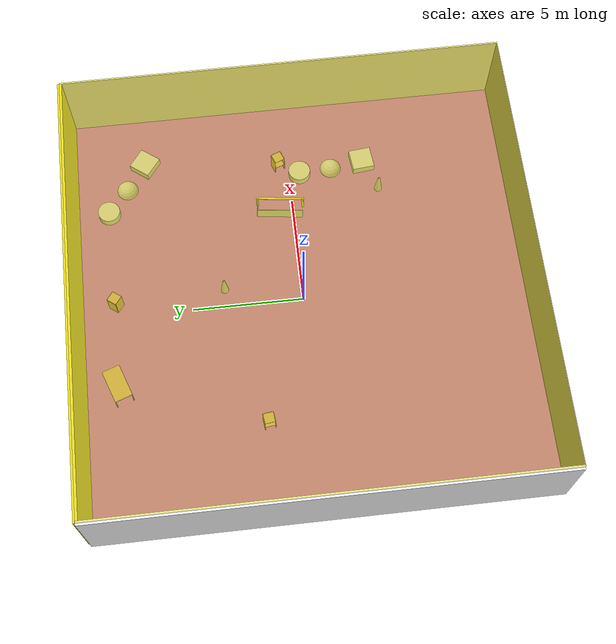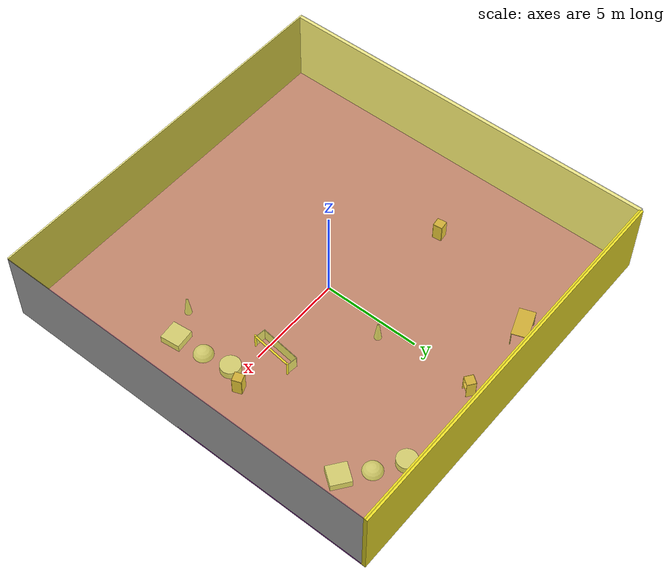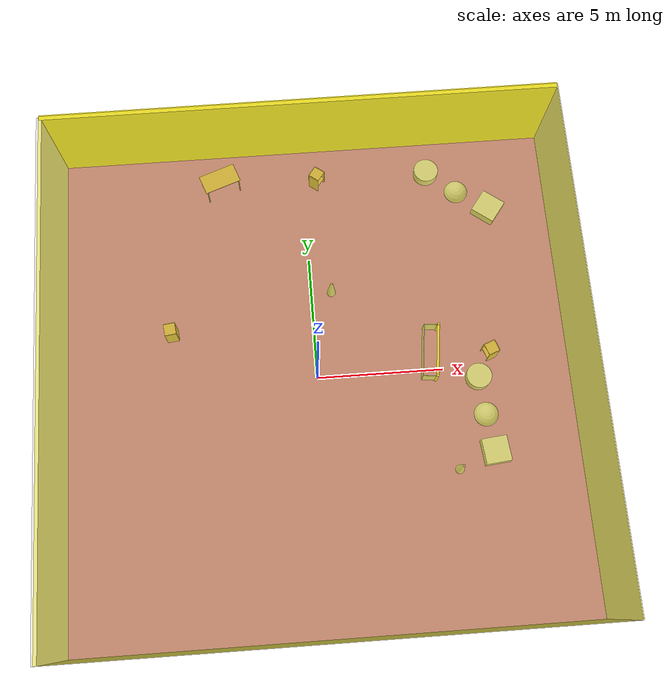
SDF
<sdf version="1.4">
 <world name="default">
  <physics type="ode">
   <max_step_size>0.001</max_step_size>
   <real_time_factor>1</real_time_factor>
   <real_time_update_rate>1000</real_time_update_rate>
   <gravity>0 0 -9.8</gravity>
  </physics>
  <scene><ambient>0.4 0.4 0.4 1</ambient><background>0.7 0.7 0.7 1</background><shadows>1</shadows></scene>
  <model name="Surrounding">
   <static>1</static>
   <link name="Ceiling">
    <collision name="Ceiling_Collision"><geometry><box><size>20 20 0.1</size></box></geometry></collision>
    <visual name="Ceiling_Visual">
     <geometry><box><size>20 20 0.1</size></box></geometry>
     <material>
      <script>
       <uri>file://media/materials/scripts/gazebo.material</uri>
       <name>Gazebo/YellowTransparent</name>
      </script>
     </material>
    </visual>
    <pose>0 0 4.05 0 0 0</pose>
   </link>
   <link name="Wall_South">
    <collision name="Wall_South_Collision">
     <geometry><box><size>20 0 4</size></box></geometry>
     <pose>0 0 2 0 -0 0</pose>
    </collision>
    <visual name="Wall_South_Visual">
     <pose>0 0 2 0 -0 0</pose>
     <geometry><box><size>20 0 4</size></box></geometry>
     <material>
      <script><uri>file://media/materials/scripts/gazebo.material</uri><name>Gazebo/DarkGrey</name></script>
     </material>
    </visual>
    <velocity_decay><linear>0</linear><angular>0</angular></velocity_decay>
    <pose>0 -10 0 0 -0 0</pose>
   </link>
   <link name="Wall_East">
    <collision name="Wall_21_Collision">
     <geometry><box><size>20 0 4</size></box></geometry>
     <pose>0 0 2 0 -0 0</pose>
    </collision>
    <visual name="Wall_21_Visual">
     <pose>0 0 2 0 -0 0</pose>
     <geometry><box><size>20 0 4</size></box></geometry>
     <material>
      <script><uri>file://media/materials/scripts/gazebo.material</uri><name>Gazebo/JointAnchor</name></script>
     </material>
    </visual>
    <velocity_decay><linear>0</linear><angular>0</angular></velocity_decay>
    <pose>10 0 0 0 -0 1.5708</pose>
   </link>
   <link name="Wall_North">
    <collision name="Wall_22_Collision">
     <geometry><box><size>20 0.2 4</size></box></geometry>
     <pose>0 0 2 0 -0 0</pose>
    </collision>
    <visual name="Wall_22_Visual">
     <pose>0 0 2 0 -0 0</pose>
     <geometry><box><size>20 0.2 4</size></box></geometry>
     <material>
      <script><uri>file://media/materials/scripts/gazebo.material</uri><name>Gazebo/Yellow</name></script>
     </material>
    </visual>
    <velocity_decay><linear>0</linear><angular>0</angular></velocity_decay>
    <pose>0 10 0 0 -0 0</pose>
   </link>
   <link name="Wall_West">
    <collision name="Wall_23_Collision">
     <geometry><box><size>20 0.2 4</size></box></geometry>
     <pose>0 0 2 0 -0 0</pose>
    </collision>
    <visual name="Wall_23_Visual">
     <pose>0 0 2 0 -0 0</pose>
     <geometry><box><size>20 0.2 4</size></box></geometry>
     <material>
      <script><uri>file://media/materials/scripts/gazebo.material</uri><name>Gazebo/White</name></script>
     </material>
    </visual>
    <velocity_decay><linear>0</linear><angular>0</angular></velocity_decay>
    <pose>-10 0 0 0 0 -1.5708</pose>
   </link>
   <link name="Ground_link">
    <collision name="collision">
     <pose>0 0 .05 0 -0 0</pose>
     <geometry><box><size>20 20 0.1</size></box></geometry>
    </collision>
    <visual name="visual">
     <pose>0 0 .05 0 -0 0</pose>
     <geometry><box><size>20 20 0.1</size></box></geometry>
     <material>
      <script><uri>file://media/materials/scripts/gazebo.material</uri><name>Gazebo/PurpleGlow</name></script>
     </material>
    </visual>
   </link>
   <static>1</static>
  </model>
  <spherical_coordinates>
   <surface_model>EARTH_WGS84</surface_model>
   <latitude_deg>0</latitude_deg>
   <longitude_deg>0</longitude_deg>
   <elevation>0</elevation>
   <heading_deg>0</heading_deg>
  </spherical_coordinates>
  <light name="lightball_0" type="diffuse">
   <diffuse>0.8 0.8 0.8 1</diffuse>
   <specular>0.2 0.2 0.2 1</specular>
   <attenuation>
    <range>100</range>
    <constant>0.7</constant>
    <linear>0.01</linear>
    <quadratic>0.001</quadratic>
   </attenuation>
   <direction>-0.5 0.1 -0.9</direction>
   <pose>-7.10863783365 3.12854345068 3.13963496217 0 0 0</pose>
  </light>
  <include><uri>model://cabinet</uri><pose>-5.69601083111 2.131288888 0 0 0 0.126048085932</pose></include>
  <include><uri>model://table</uri><pose>-3.44273214668 8.47718876831 0 0 0 0.347383932935</pose></include>
  <include>
   <uri>model://construction_cone</uri>
   <pose>0.800474261228 3.5154632133 0 0 0 1.51937589537</pose>
  </include>
  <include><uri>model://cabinet</uri><pose>0.553689545459 8.40905563237 0 0 0 2.50785684606</pose></include>
  <include>
   <uri>model://construction_cone</uri>
   <pose>5.20563436326 -4.07155385286 0 0 0 0.238739279261</pose>
  </include>
  <include>
   <uri>model://robocup_3Dsim_goal</uri>
   <pose>4.76976477344 0.585414627537 0 0 0 3.02271795791</pose>
  </include>
  <include>
   <uri>model://textured_shapes</uri>
   <pose>6.4867197111 -1.97247498217 0 0 0 0.106501145969</pose>
  </include>
  <include><uri>model://cabinet</uri><pose>6.84859366745 0.476590943795 0 0 0 0.364115824692</pose></include>
  <include>
   <uri>model://textured_shapes</uri>
   <pose>6.35101035074 7.60394818492 0 0 0 0.928786439025</pose>
  </include>
 </world>
</sdf>

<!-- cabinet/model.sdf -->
<sdf version="1.5">
  <model name="cabinet">
    <static>true</static>
    <link name="cabinet_bottom_plate">
      <inertial>
        <pose>0 0 -1 0 0 0</pose>
        <inertia>
          <ixx>2.050000</ixx>
          <ixy>0</ixy>
          <ixz>0</ixz>
          <iyy>2.050000</iyy>
          <iyz>0</iyz>
          <izz>2.050000</izz>
        </inertia>
        <mass>25.000000</mass>
      </inertial>
      <collision name="cabinet_bottom_plate_geom">
        <pose>0 0 0.010000 0 0 0</pose>
        <geometry>
          <box>
            <size>0.450000 0.450000 0.020000</size>
          </box>
        </geometry>
      </collision>
      <visual name="cabinet_bottom_plate_geom_visual">
        <pose>0 0 0.010000 0 0 0</pose>
        <geometry>
          <box>
            <size>0.450000 0.450000 0.020000</size>
          </box>
        </geometry>
        <material>
          <script>
            <uri>model://media/materials/scripts/gazebo.material</uri>
            <name>Gazebo/Wood</name>
          </script>
        </material>
      </visual>
      <collision name="cabinet_bottom_plate_geom_cabinet_back_plate">
        <pose>0.235000 0 0.510000 0 0 0</pose>
        <geometry>
          <box>
            <size>0.020000 0.450000 1.020000</size>
          </box>
        </geometry>
      </collision>
      <visual name="cabinet_bottom_plate_geom_cabinet_back_plate_visual">
        <pose>0.235000 0 0.510000 0 0 0</pose>
        <geometry>
          <box>
            <size>0.020000 0.450000 1.020000</size>
          </box>
        </geometry>
        <material>
          <script>
            <uri>model://media/materials/scripts/gazebo.material</uri>
            <name>Gazebo/Wood</name>
          </script>
        </material>
      </visual>
      <collision name="cabinet_bottom_plate_geom_cabinet_left_plate">
        <pose>0 0.235000 0.510000 0 0 0</pose>
        <geometry>
          <box>
            <size>0.450000 0.020000 1.020000</size>
          </box>
        </geometry>
      </collision>
      <visual name="cabinet_bottom_plate_geom_cabinet_left_plate_visual">
        <pose>0 0.235000 0.510000 0 0 0</pose>
        <geometry>
          <box>
            <size>0.450000 0.020000 1.020000</size>
          </box>
        </geometry>
        <material>
          <script>
            <uri>model://media/materials/scripts/gazebo.material</uri>
            <name>Gazebo/Wood</name>
          </script>
        </material>
      </visual>
      <collision name="cabinet_bottom_plate_geom_cabinet_middle_plate">
        <pose>0 0 0.510000 0 0 0</pose>
        <geometry>
          <box>
            <size>0.450000 0.450000 0.020000</size>
          </box>
        </geometry>
      </collision>
      <visual name="cabinet_bottom_plate_geom_cabinet_middle_plate_visual">
        <pose>0 0 0.510000 0 0 0</pose>
        <geometry>
          <box>
            <size>0.450000 0.450000 0.020000</size>
          </box>
        </geometry>
        <material>
          <script>
            <uri>model://media/materials/scripts/gazebo.material</uri>
            <name>Gazebo/Wood</name>
          </script>
        </material>
      </visual>
      <collision name="cabinet_bottom_plate_geom_cabinet_right_plate">
        <pose>0 -0.235000 0.510000 0 0 0</pose>
        <geometry>
          <box>
            <size>0.450000 0.020000 1.020000</size>
          </box>
        </geometry>
      </collision>
      <visual name="cabinet_bottom_plate_geom_cabinet_right_plate_visual">
        <pose>0 -0.235000 0.510000 0 0 0</pose>
        <geometry>
          <box>
            <size>0.450000 0.020000 1.020000</size>
          </box>
        </geometry>
        <material>
          <script>
            <uri>model://media/materials/scripts/gazebo.material</uri>
            <name>Gazebo/Wood</name>
          </script>
        </material>
      </visual>
      <collision name="cabinet_bottom_plate_geom_cabinet_top_plate">
        <pose>0 0 1.010000 0 0 0</pose>
        <geometry>
          <box>
            <size>0.450000 0.450000 0.020000</size>
          </box>
        </geometry>
      </collision>
      <visual name="cabinet_bottom_plate_geom_cabinet_top_plate_visual">
        <pose>0 0 1.010000 0 0 0</pose>
        <geometry>
          <box>
            <size>0.450000 0.450000 0.020000</size>
          </box>
        </geometry>
        <material>
          <script>
            <uri>model://media/materials/scripts/gazebo.material</uri>
            <name>Gazebo/Wood</name>
          </script>
        </material>
      </visual>
    </link>
  </model>
</sdf>

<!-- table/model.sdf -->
<sdf version="1.5">
  <model name="table">
    <static>true</static>
    <link name="link">
      <collision name="surface">
        <pose>0 0 1.0 0 0 0</pose>
        <geometry>
          <box>
            <size>1.5 0.8 0.03</size>
          </box>
        </geometry>
        <surface>
          <friction>
            <ode>
              <mu>0.6</mu>
              <mu2>0.6</mu2>
            </ode>
          </friction>
        </surface>
      </collision>
      <visual name="visual1">
        <pose>0 0 1.0 0 0 0</pose>
        <geometry>
          <box>
            <size>1.5 0.8 0.03</size>
          </box>
        </geometry>
        <material>
          <script>
            <uri>model://media/materials/scripts/gazebo.material</uri>
            <name>Gazebo/Wood</name>
          </script>
        </material>
      </visual>
      <collision name="front_left_leg">
        <pose>0.68 0.38 0.5 0 0 0</pose>
        <geometry>
          <cylinder>
            <radius>0.02</radius>
            <length>1.0</length>
          </cylinder>
        </geometry>
      </collision>
      <visual name="front_left_leg">
        <pose>0.68 0.38 0.5 0 0 0</pose>
        <geometry>
          <cylinder>
            <radius>0.02</radius>
            <length>1.0</length>
          </cylinder>
        </geometry>
        <material>
          <script>
            <uri>model://media/materials/scripts/gazebo.material</uri>
            <name>Gazebo/Grey</name>
          </script>
        </material>
      </visual>
      <collision name="front_right_leg">
        <pose>0.68 -0.38 0.5 0 0 0</pose>
        <geometry>
          <cylinder>
            <radius>0.02</radius>
            <length>1.0</length>
          </cylinder>
        </geometry>
      </collision>
      <visual name="front_right_leg">
        <pose>0.68 -0.38 0.5 0 0 0</pose>
        <geometry>
          <cylinder>
            <radius>0.02</radius>
            <length>1.0</length>
          </cylinder>
        </geometry>
        <material>
          <script>
            <uri>model://media/materials/scripts/gazebo.material</uri>
            <name>Gazebo/Grey</name>
          </script>
        </material>
      </visual>
      <collision name="back_right_leg">
        <pose>-0.68 -0.38 0.5 0 0 0</pose>
        <geometry>
          <cylinder>
            <radius>0.02</radius>
            <length>1.0</length>
          </cylinder>
        </geometry>
      </collision>
      <visual name="back_right_leg">
        <pose>-0.68 -0.38 0.5 0 0 0</pose>
        <geometry>
          <cylinder>
            <radius>0.02</radius>
            <length>1.0</length>
          </cylinder>
        </geometry>
        <material>
          <script>
            <uri>model://media/materials/scripts/gazebo.material</uri>
            <name>Gazebo/Grey</name>
          </script>
        </material>
      </visual>
      <collision name="back_left_leg">
        <pose>-0.68 0.38 0.5 0 0 0</pose>
        <geometry>
          <cylinder>
            <radius>0.02</radius>
            <length>1.0</length>
          </cylinder>
        </geometry>
      </collision>
      <visual name="back_left_leg">
        <pose>-0.68 0.38 0.5 0 0 0</pose>
        <geometry>
          <cylinder>
            <radius>0.02</radius>
            <length>1.0</length>
          </cylinder>
        </geometry>
        <material>
          <script>
            <uri>model://media/materials/scripts/gazebo.material</uri>
            <name>Gazebo/Grey</name>
          </script>
        </material>
      </visual>
    </link>
  </model>
</sdf>

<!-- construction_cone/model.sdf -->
<sdf version="1.5">
  <model name="Construction Cone">
    <link name="link">
      <collision name="collision">
        <geometry>
          <mesh>
            <scale>10 10 10</scale>
            <uri>file://isr-testbed/construction_cone/meshes/construction_cone.dae</uri>
          </mesh>
        </geometry>
      </collision>
      <visual name="visual">
        <geometry>
          <mesh>
            <scale>10 10 10</scale>
            <uri>file://isr-testbed/construction_cone/meshes/construction_cone.dae</uri>
          </mesh>
        </geometry>
      </visual>
    </link>
  </model>
</sdf>

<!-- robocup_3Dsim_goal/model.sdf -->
<sdf version="1.5">
  <model name="robocup_3d_goal">
    <static>true</static>
    <link name="left_post">
      <pose>0 1.05 0.45 0 0 0</pose>
      <collision name="collision">
        <geometry>
          <cylinder>
            <radius>0.05</radius>
            <length>0.9</length>
          </cylinder>
        </geometry>
      </collision>
      <visual name="visual">
        <geometry>
          <cylinder>
            <radius>0.05</radius>
            <length>0.9</length>
          </cylinder>
        </geometry>
        <material>
          <script>
            <uri>file://media/materials/scripts/gazebo.material</uri>
            <name>Gazebo/ZincYellow</name>
          </script>
        </material>
      </visual>
    </link>
    <link name="left_support_horiz_lower">
      <pose>0.30 1.05 0.01 0 0 0</pose>
      <collision name="collision">
        <geometry>
          <box>
            <size>0.50 0.02 0.02</size>
          </box>
        </geometry>
      </collision>
      <visual name="visual">
        <geometry>
          <box>
            <size>0.50 0.02 0.02</size>
          </box>
        </geometry>
        <material>
          <script>
            <uri>file://media/materials/scripts/gazebo.material</uri>
            <name>Gazebo/White</name>
          </script>
        </material>
      </visual>
    </link>
    <link name="left_support_horiz_upper">
      <pose>0.30 1.05 0.79 0 0 0</pose>
      <collision name="collision">
        <geometry>
          <box>
            <size>0.50 0.02 0.02</size>
          </box>
        </geometry>
      </collision>
      <visual name="visual">
        <geometry>
          <box>
            <size>0.50 0.02 0.02</size>
          </box>
        </geometry>
        <material>
          <script>
            <uri>file://media/materials/scripts/gazebo.material</uri>
            <name>Gazebo/White</name>
          </script>
        </material>
      </visual>
    </link>
    <link name="left_support_vertical">
      <pose>0.56 1.05 0.4 0 1.5708 0</pose>
      <collision name="collision">
        <geometry>
          <box>
            <size>0.80 0.02 0.02</size>
          </box>
        </geometry>
      </collision>
      <visual name="visual">
        <geometry>
          <box>
            <size>0.80 0.02 0.02</size>
          </box>
        </geometry>
        <material>
          <script>
            <uri>file://media/materials/scripts/gazebo.material</uri>
            <name>Gazebo/White</name>
          </script>
        </material>
      </visual>
    </link>
    <link name="right_support_horiz_lower">
      <pose>0.30 -1.05 0.01 0 0 0</pose>
      <collision name="collision">
        <geometry>
          <box>
            <size>0.50 0.02 0.02</size>
          </box>
        </geometry>
      </collision>
      <visual name="visual">
        <geometry>
          <box>
            <size>0.50 0.02 0.02</size>
          </box>
        </geometry>
        <material>
          <script>
            <uri>file://media/materials/scripts/gazebo.material</uri>
            <name>Gazebo/White</name>
          </script>
        </material>
      </visual>
    </link>
    <link name="right_support_horiz_upper">
      <pose>0.30 -1.05 0.79 0 0 0</pose>
      <collision name="collision">
        <geometry>
          <box>
            <size>0.50 0.02 0.02</size>
          </box>
        </geometry>
      </collision>
      <visual name="visual">
        <geometry>
          <box>
            <size>0.50 0.02 0.02</size>
          </box>
        </geometry>
        <material>
          <script>
            <uri>file://media/materials/scripts/gazebo.material</uri>
            <name>Gazebo/White</name>
          </script>
        </material>
      </visual>
    </link>
    <link name="right_support_vertical">
      <pose>0.56 -1.05 0.4 0 1.5708 0</pose>
      <collision name="collision">
        <geometry>
          <box>
            <size>0.80 0.02 0.02</size>
          </box>
        </geometry>
      </collision>
      <visual name="visual">
        <geometry>
          <box>
            <size>0.80 0.02 0.02</size>
          </box>
        </geometry>
        <material>
          <script>
            <uri>file://media/materials/scripts/gazebo.material</uri>
            <name>Gazebo/White</name>
          </script>
        </material>
      </visual>
    </link>
    <link name="center_support_horiz_lower">
      <pose>0.56 0 0.01 0 1.5708 0</pose>
      <collision name="collision">
        <geometry>
          <box>
            <size>0.02 2.08 0.02</size>
          </box>
        </geometry>
      </collision>
      <visual name="visual">
        <geometry>
          <box>
            <size>0.02 2.08 0.02</size>
          </box>
        </geometry>
        <material>
          <script>
            <uri>file://media/materials/scripts/gazebo.material</uri>
            <name>Gazebo/White</name>
          </script>
        </material>
      </visual>
    </link>
    <link name="center_support_horiz_upper">
      <pose>0.56 0 0.79 0 1.5708 0</pose>
      <collision name="collision">
        <geometry>
          <box>
            <size>0.02 2.08 0.02</size>
          </box>
        </geometry>
      </collision>
      <visual name="visual">
        <geometry>
          <box>
            <size>0.02 2.08 0.02</size>
          </box>
        </geometry>
        <material>
          <script>
            <uri>file://media/materials/scripts/gazebo.material</uri>
            <name>Gazebo/White</name>
          </script>
        </material>
      </visual>
    </link>
    <link name="right_post">
      <pose>0 -1.05 0.45 0 0 0</pose>
      <collision name="collision">
        <geometry>
          <cylinder>
            <radius>0.05</radius>
            <length>0.9</length>
          </cylinder>
        </geometry>
      </collision>
      <visual name="visual">
        <geometry>
          <cylinder>
            <radius>0.05</radius>
            <length>0.9</length>
          </cylinder>
        </geometry>
        <material>
          <script>
            <uri>file://media/materials/scripts/gazebo.material</uri>
            <name>Gazebo/ZincYellow</name>
          </script>
        </material>
      </visual>
    </link>
    <link name="crossbar">
      <pose>0 0 0.85 1.57 1.57 0</pose>
      <collision name="collision">
        <geometry>
          <cylinder>
            <radius>0.05</radius>
            <length>2.0</length>
          </cylinder>
        </geometry>
      </collision>
      <visual name="visual">
        <geometry>
          <cylinder>
            <radius>0.05</radius>
            <length>2.0</length>
          </cylinder>
        </geometry>
        <material>
          <script>
            <uri>file://media/materials/scripts/gazebo.material</uri>
            <name>Gazebo/ZincYellow</name>
          </script>
        </material>
      </visual>
    </link>
    <link name="center_net">
      <pose>0.56 0 0.40 0 0 0</pose>
      <collision name="collision">
        <geometry>
          <box>
            <size>0.01 2.1 0.80</size>
          </box>
        </geometry>
      </collision>
      <visual name="visual">
        <geometry>
          <box>
            <size>0.01 2.1 0.80</size>
          </box>
        </geometry>
        <material>
          <script>
            <uri>model://../model_source/models/robocup09_spl_field/materials/scripts/</uri>
            <uri>model://../model_source/models/robocup09_spl_field/materials/textures/</uri>
            <name>RoboCup/Net</name>
          </script>
        </material>
      </visual>
    </link>
    <link name="left_net">
      <pose>0.30 1.05 0.40 0 0 0</pose>
      <collision name="collision">
        <geometry>
          <box>
            <size>0.50 0.01 0.76</size>
          </box>
        </geometry>
      </collision>
      <visual name="visual">
        <geometry>
          <box>
            <size>0.50 0.01 0.76</size>
          </box>
        </geometry>
        <material>
          <script>
            <uri>model://../model_source/models/robocup09_spl_field/materials/scripts/</uri>
            <uri>model://../model_source/models/robocup09_spl_field/materials/textures/</uri>
            <name>RoboCup/Net</name>
          </script>
        </material>
      </visual>
    </link>
    <link name="right_net">
      <pose>0.30 -1.05 0.40 0 0 0</pose>
      <collision name="collision">
        <geometry>
          <box>
            <size>0.50 0.01 0.76</size>
          </box>
        </geometry>
      </collision>
      <visual name="visual">
        <geometry>
          <box>
            <size>0.50 0.01 0.76</size>
          </box>
        </geometry>
        <material>
          <script>
            <uri>model://../model_source/models/robocup09_spl_field/materials/scripts/</uri>
            <uri>model://../model_source/models/robocup09_spl_field/materials/textures/</uri>
            <name>RoboCup/Net</name>
          </script>
        </material>
      </visual>
    </link>
  </model>
</sdf>

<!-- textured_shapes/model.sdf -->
<sdf version="1.6">
  <model name="textured_shapes">
    <pose>0 0 0.5 0 0 0</pose>
    <link name="box">
      <pose>0 -1.5 0 0 0 0</pose>
      <collision name="collision">
        <geometry>
          <box>
            <size>1 1 1</size>
          </box>
        </geometry>
      </collision>
      <visual name="visual">
        <geometry>
          <box>
            <size>1 1 1</size>
          </box>
        </geometry>
        <material>
          <script>
            <uri>model://../model_source/models/textured_shapes/materials/scripts</uri>
            <uri>model://../model_source/models/textured_shapes/materials/textures</uri>
            <name>TexturedShape/Squares</name>
          </script>
        </material>
      </visual>
    </link>
    <link name="sphere">
      <collision name="collision">
        <geometry>
          <sphere>
            <radius>0.5</radius>
          </sphere>
        </geometry>
      </collision>
      <visual name="visual">
        <geometry>
          <sphere>
            <radius>0.5</radius>
          </sphere>
        </geometry>
        <material>
          <script>
            <uri>model://../model_source/models/textured_shapes/materials/scripts</uri>
            <uri>model://../model_source/models/textured_shapes/materials/textures</uri>
            <name>TexturedShape/Squares</name>
          </script>
        </material>
      </visual>
    </link>
    <link name="cylinder">
      <pose>0 1.5 0 0 0 0</pose>
      <collision name="collision">
        <geometry>
          <cylinder>
            <radius>0.5</radius>
            <length>1</length>
          </cylinder>
        </geometry>
      </collision>
      <visual name="visual">
        <geometry>
          <cylinder>
            <radius>0.5</radius>
            <length>1</length>
          </cylinder>
        </geometry>
        <material>
          <script>
            <uri>model://../model_source/models/textured_shapes/materials/scripts</uri>
            <uri>model://../model_source/models/textured_shapes/materials/textures</uri>
            <name>TexturedShape/Squares</name>
          </script>
        </material>
      </visual>
    </link>
  </model>
</sdf>
